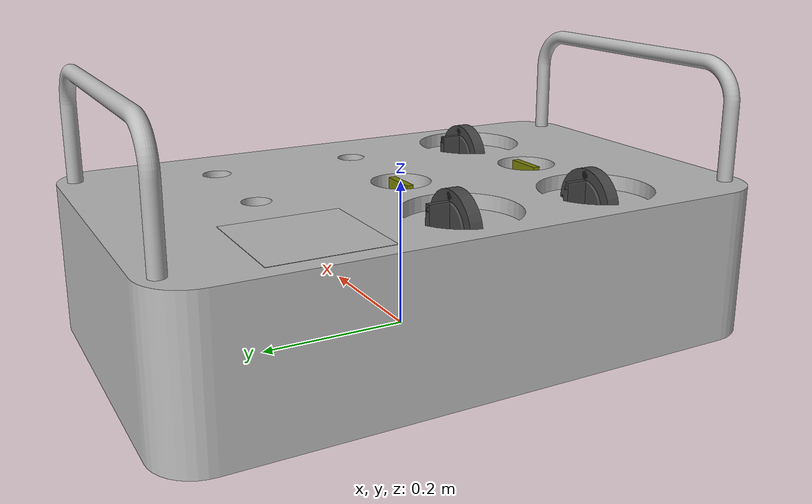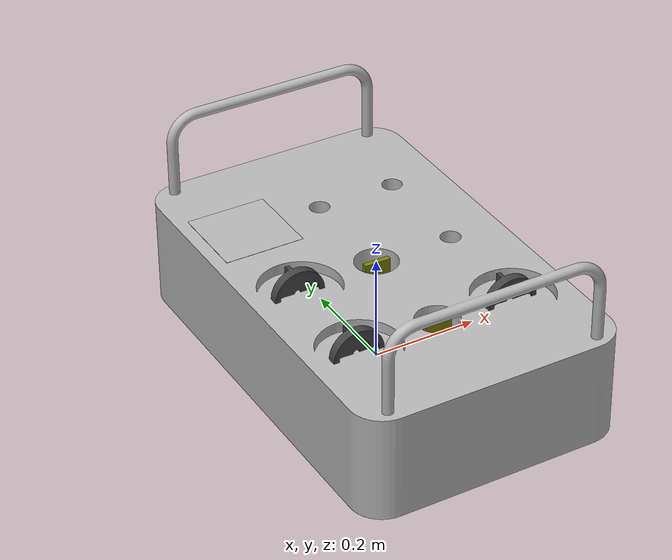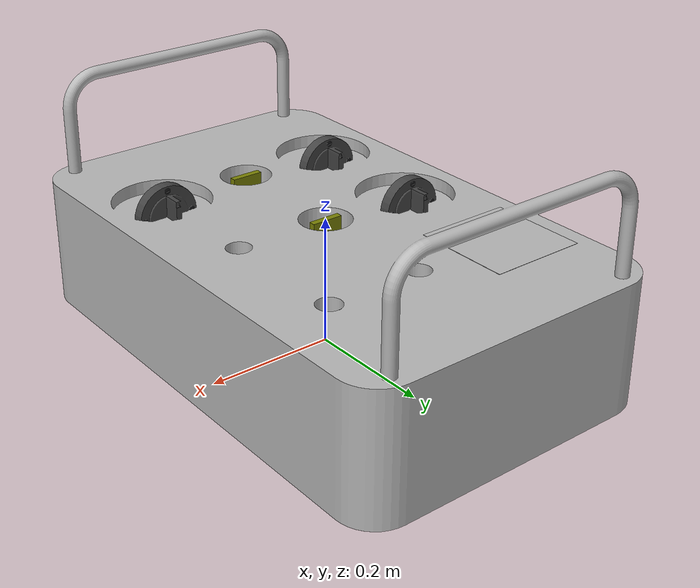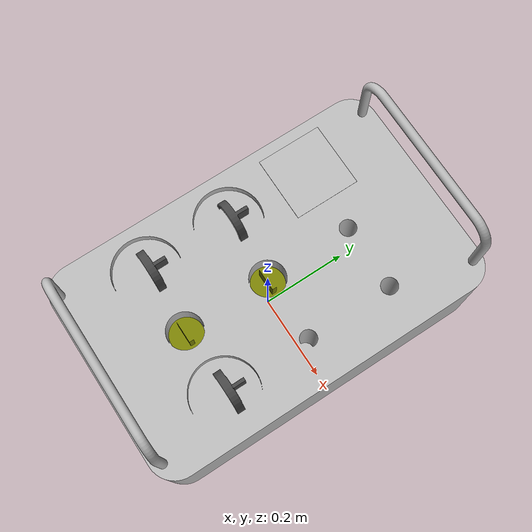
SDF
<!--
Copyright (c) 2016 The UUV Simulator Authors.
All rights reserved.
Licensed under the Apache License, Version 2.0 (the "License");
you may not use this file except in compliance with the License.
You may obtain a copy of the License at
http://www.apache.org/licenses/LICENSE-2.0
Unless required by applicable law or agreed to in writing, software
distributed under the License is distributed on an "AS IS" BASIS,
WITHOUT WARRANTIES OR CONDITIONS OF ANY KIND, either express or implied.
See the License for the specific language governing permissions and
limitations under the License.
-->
<?xml version="1.0" ?>
<sdf version="1.5">
  <model name="rov_bop_panel_marker">
    <link name="panel">
      <inertial>
        <mass>10</mass>
        <inertia>
          <ixx>0.4166666666666667</ixx>
          <iyy>0.4166666666666667</iyy>
          <izz>0.4166666666666667</izz>
          <ixy>0</ixy>
          <ixz>0</ixz>
          <iyz>0</iyz>
        </inertia>
      </inertial>

      <collision name="panel_collision">
        <geometry>
          <mesh>
            <uri>model://rov_bop_panel/meshes/BOP_Panel.dae</uri>
          </mesh>
        </geometry>
      </collision>

      <visual name="panel_visual">
        <geometry>
          <mesh>
            <uri>model://rov_bop_panel/meshes/BOP_Panel.dae</uri>
          </mesh>
        </geometry>
      </visual>

      <self_collide>0</self_collide>
    </link>

    <link name="valve_1">
      <pose>-0.15 -0.2 0.18 0 0 1.57</pose>
      <inertial>
        <mass>0.5</mass>
        <inertia>
          <ixx>0.0017520833333333331</ixx>
          <iyy>0.0017520833333333331</iyy>
          <izz>0.0017520833333333331</izz>
          <ixy>0</ixy>
          <ixz>0</ixz>
          <iyz>0</iyz>
        </inertia>
      </inertial>

      <collision name="valve_1_collision">
        <geometry>
          <mesh>
            <uri>model://rov_bop_panel/meshes/Valve.dae</uri>
          </mesh>
        </geometry>
      </collision>

      <visual name="valve_1_visual">
        <geometry>
          <mesh>
            <uri>model://rov_bop_panel/meshes/Valve.dae</uri>
          </mesh>
        </geometry>
      </visual>
    </link>

    <joint name="valve_1_joint" type="revolute">
      <parent>panel</parent>
      <child>valve_1</child>
      <pose>0 0 0 0 0 0</pose>
      <axis>
        <xyz>0 0 1</xyz>
        <limit>
          <upper>0</upper>
          <lower>-1.57</lower>
        </limit>
        <dynamics>
          <damping>0.5</damping>
          <friction>10</friction>
        </dynamics>
      </axis>
    </joint>

    <link name="valve_2">
      <pose>0.15 -0.2 0.18 0 0 1.57</pose>

      <inertial>
        <mass>0.5</mass>
        <inertia>
          <ixx>0.0017520833333333331</ixx>
          <iyy>0.0017520833333333331</iyy>
          <izz>0.0017520833333333331</izz>
          <ixy>0</ixy>
          <ixz>0</ixz>
          <iyz>0</iyz>
        </inertia>
      </inertial>

      <collision name="valve_2_collision">
        <geometry>
          <mesh>
            <uri>model://rov_bop_panel/meshes/Valve.dae</uri>
          </mesh>
        </geometry>
      </collision>

      <visual name="valve_2_visual">
        <geometry>
          <mesh>
            <uri>model://rov_bop_panel/meshes/Valve.dae</uri>
          </mesh>
        </geometry>
      </visual>
    </link>

    <joint name="valve_2_joint" type="revolute">
      <parent>panel</parent>
      <child>valve_2</child>
      <pose>0 0 0 0 0 0</pose>
      <axis>
        <xyz>0 0 1</xyz>
        <limit>
          <upper>0</upper>
          <lower>-1.57</lower>
        </limit>
        <dynamics>
          <damping>0.5</damping>
          <friction>10</friction>
        </dynamics>
      </axis>
    </joint>

    <!-- Valve 3  -->
    <link name="valve_3">
      <pose>-0.15 0 0.18 0 0 1.57</pose>

      <inertial>
        <mass>0.5</mass>
        <inertia>
          <ixx>0.0017520833333333331</ixx>
          <iyy>0.0017520833333333331</iyy>
          <izz>0.0017520833333333331</izz>
          <ixy>0</ixy>
          <ixz>0</ixz>
          <iyz>0</iyz>
        </inertia>
      </inertial>

      <collision name="valve_3_collision">
        <geometry>
          <mesh>
            <uri>model://rov_bop_panel/meshes/Valve.dae</uri>
          </mesh>
        </geometry>
      </collision>

      <visual name="valve_3_visual">
        <geometry>
          <mesh>
            <uri>model://rov_bop_panel/meshes/Valve.dae</uri>
          </mesh>
        </geometry>
      </visual>
    </link>

    <joint name="valve_3_joint" type="revolute">
      <parent>panel</parent>
      <child>valve_3</child>
      <pose>0 0 0 0 0 0</pose>
      <axis>
        <xyz>0 0 1</xyz>
        <limit>
          <upper>0</upper>
          <lower>-1.57</lower>
        </limit>
        <dynamics>
          <damping>0.5</damping>
          <friction>10</friction>
        </dynamics>
      </axis>
    </joint>

    <!-- Valve 4 (Small) -->
    <link name="valve_4">
      <pose>0 -0.2 0.14 0 0 0</pose>

      <inertial>
        <mass>0.5</mass>
        <inertia>
          <ixx>0.0017520833333333331</ixx>
          <iyy>0.0017520833333333331</iyy>
          <izz>0.0017520833333333331</izz>
          <ixy>0</ixy>
          <ixz>0</ixz>
          <iyz>0</iyz>
        </inertia>
      </inertial>

      <collision name="valve_4_collision">
        <geometry>
          <mesh>
            <uri>model://rov_bop_panel/meshes/SmallValve.dae</uri>
          </mesh>
        </geometry>
      </collision>

      <visual name="valve_4_visual">
        <geometry>
          <mesh>
            <uri>model://rov_bop_panel/meshes/SmallValve.dae</uri>
          </mesh>
        </geometry>
      </visual>
    </link>

    <joint name="valve_4_joint" type="revolute">
      <parent>panel</parent>
      <child>valve_4</child>
      <pose>0 0 0 0 0 0</pose>
      <axis>
        <xyz>0 0 1</xyz>
        <limit>
          <upper>0</upper>
          <lower>-1.57</lower>
        </limit>
        <dynamics>
          <damping>0.5</damping>
          <friction>10</friction>
        </dynamics>
      </axis>
    </joint>

    <!-- Valve 5 (Small) -->
    <link name="valve_5">
      <pose>0 0 0.14 0 0 0</pose>

      <inertial>
        <mass>0.5</mass>
        <inertia>
          <ixx>0.0017520833333333331</ixx>
          <iyy>0.0017520833333333331</iyy>
          <izz>0.0017520833333333331</izz>
          <ixy>0</ixy>
          <ixz>0</ixz>
          <iyz>0</iyz>
        </inertia>
      </inertial>

      <collision name="valve_5_collision">
        <geometry>
          <mesh>
            <uri>model://rov_bop_panel/meshes/SmallValve.dae</uri>
          </mesh>
        </geometry>
      </collision>

      <visual name="valve_5_visual">
        <geometry>
          <mesh>
            <uri>model://rov_bop_panel/meshes/SmallValve.dae</uri>
          </mesh>
        </geometry>
      </visual>
    </link>

    <joint name="valve_5_joint" type="revolute">
      <parent>panel</parent>
      <child>valve_5</child>
      <pose>0 0 0 0 0 0</pose>
      <axis>
        <xyz>0 0 1</xyz>
        <limit>
          <upper>0</upper>
          <lower>-1.57</lower>
        </limit>
        <dynamics>
          <damping>0.5</damping>
          <friction>10</friction>
        </dynamics>
      </axis>
    </joint>

    <joint name="world_joint" type="revolute">
      <child>panel</child>
      <parent>world</parent>
      <axis>
        <limit>
          <lower>0</lower>
          <upper>0</upper>
        </limit>
        <xyz>0 1 0</xyz>
        <dynamics>
          <damping>1.0</damping>
        </dynamics>
        <use_parent_model_frame>true</use_parent_model_frame>
      </axis>
      <physics>
        <ode>
          <cfm_damping>1</cfm_damping>
        </ode>
      </physics>
    </joint>

    <link name="marker_1">
      <pose>-0.15 0.2 0.2 0 0 0</pose>
      <inertial>
        <mass>0.0001</mass>
        <inertia>
          <ixx>0.00001</ixx>
          <iyy>0.00001</iyy>
          <izz>0.00001</izz>
          <ixy>0</ixy>
          <ixz>0</ixz>
          <iyz>0</iyz>
        </inertia>
      </inertial>

      <collision name="marker_1_collision">
        <geometry>
            <box>
              <size>0.15 0.15 0.001</size>
            </box>
        </geometry>
      </collision>

      <visual name="marker_1_visual">
        <pose>0 0 0 0 0 1.57</pose>
        <geometry>
            <box>
              <size>0.15 0.15 0.001</size>
            </box>
        </geometry>
        <material>
          <script>
            <uri>file://Media/materials/scripts/bop_marker.material</uri>
            <name>BOP_Marker/Image</name>
          </script>
        </material>
      </visual>
    </link>

    <joint name="marker_1_joint" type="fixed">
      <parent>panel</parent>
      <child>marker_1</child>
      <pose>0 0 0 0 0 0</pose>
    </joint>

  </model>
</sdf>
